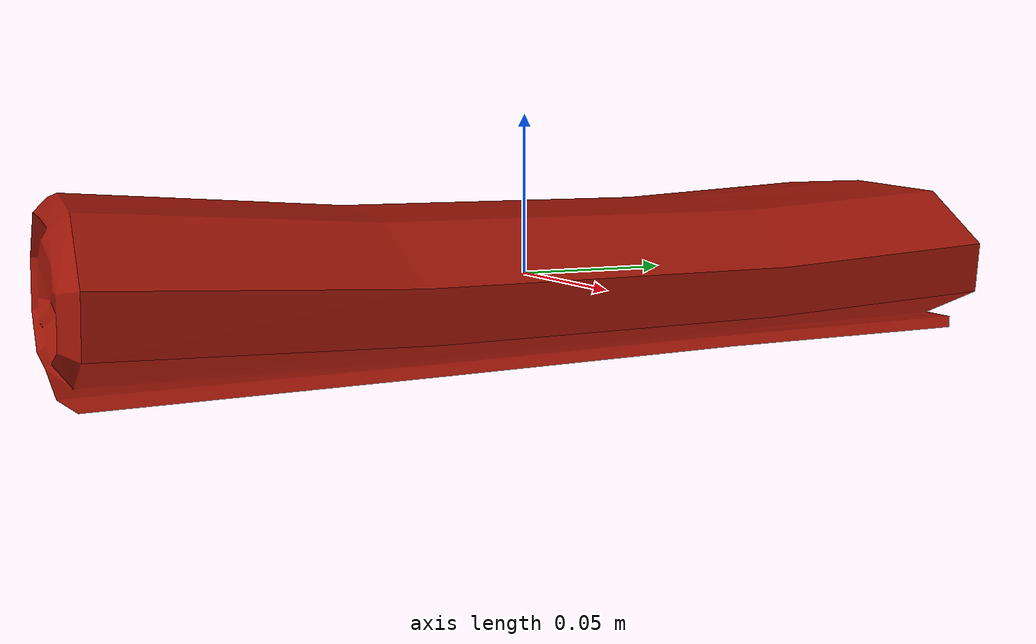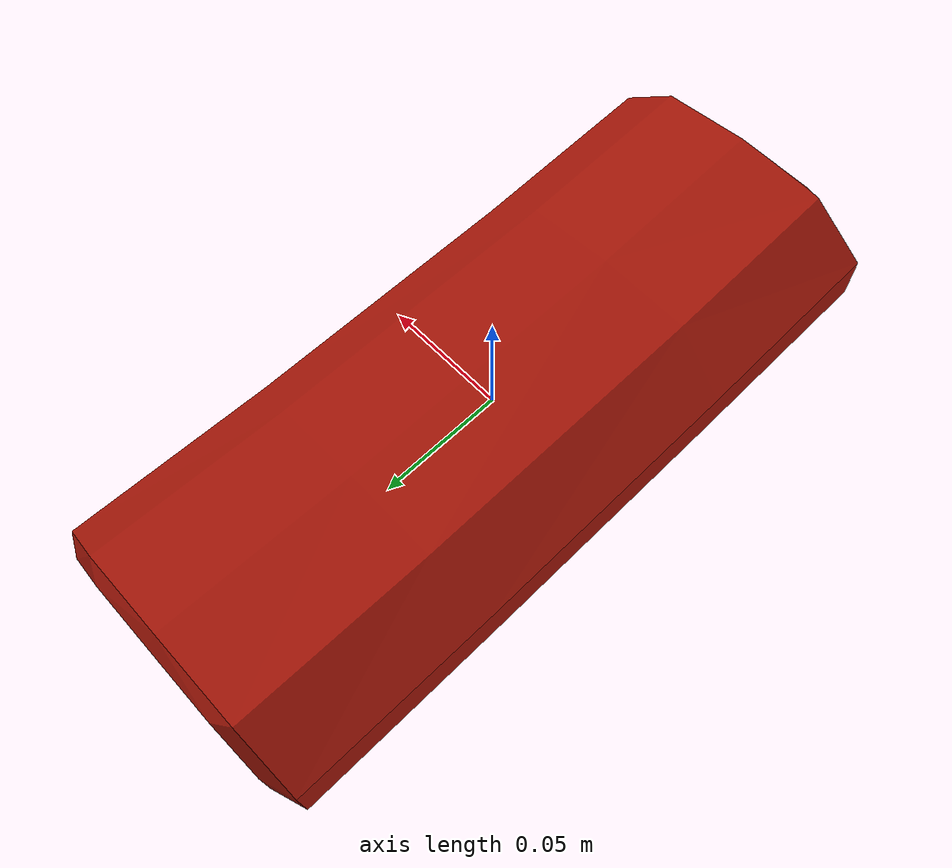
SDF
<?xml version='1.0'?>
<sdf version="1.4">
	<model name="towel2">
		<static>1</static>
		<link name="link">
			<visual name="mesh">
				<geometry>
					<mesh>
						<uri>model://meshes/towel2.dae</uri>
					</mesh>
				</geometry>
			</visual>
			<collision name="collider">
				<pose>0 0 0 0 0 0</pose>
				<geometry>
					<box>
						<size>0.117 0.281 0.051</size>
					</box>
				</geometry>
			</collision>
		</link>
	</model>
</sdf>
